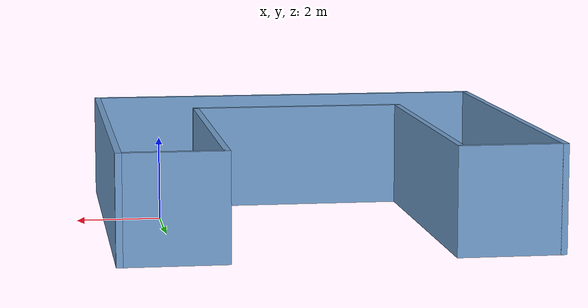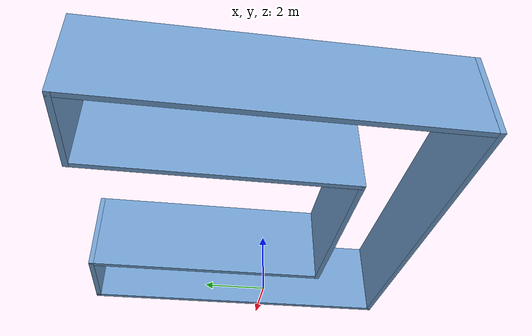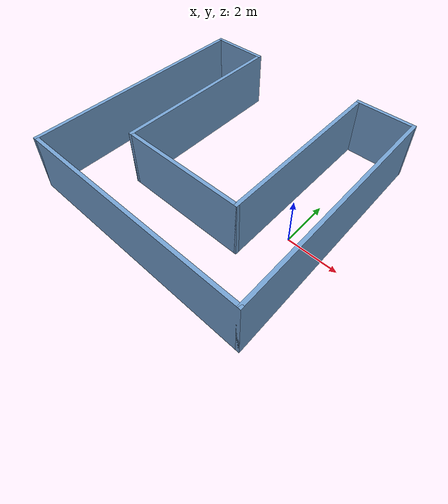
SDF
<?xml version='1.0'?>
<sdf version='1.6'>
  <model name='mybuilding'>
    <pose frame=''>-3.62858 0.777581 0 0 -0 0</pose>
    <link name='Wall_10'>
      <collision name='Wall_10_Collision'>
        <geometry>
          <box>
            <size>2.5 0.15 2.5</size>
          </box>
        </geometry>
        <pose frame=''>0 0 1.25 0 -0 0</pose>
      </collision>
      <visual name='Wall_10_Visual'>
        <pose frame=''>0 0 1.25 0 -0 0</pose>
        <geometry>
          <box>
            <size>2.5 0.15 2.5</size>
          </box>
        </geometry>
        <material>
          <script>
            <uri>file://media/materials/scripts/gazebo.material</uri>
            <name>Gazebo/Grey</name>
          </script>
          <ambient>0.447059 0.623529 0.811765 1</ambient>
        </material>
        <meta>
          <layer>0</layer>
        </meta>
      </visual>
      <pose frame=''>-3.75 4.925 0 0 -0 0</pose>
    </link>
    <link name='Wall_12'>
      <collision name='Wall_12_Collision'>
        <geometry>
          <box>
            <size>10 0.15 2.5</size>
          </box>
        </geometry>
        <pose frame=''>0 0 1.25 0 -0 0</pose>
      </collision>
      <visual name='Wall_12_Visual'>
        <pose frame=''>0 0 1.25 0 -0 0</pose>
        <geometry>
          <box>
            <size>10 0.15 2.5</size>
          </box>
        </geometry>
        <material>
          <script>
            <uri>file://media/materials/scripts/gazebo.material</uri>
            <name>Gazebo/Grey</name>
          </script>
          <ambient>0.447059 0.623529 0.811765 1</ambient>
        </material>
        <meta>
          <layer>0</layer>
        </meta>
      </visual>
      <pose frame=''>0 -4.925 0 0 -0 0</pose>
    </link>
    <link name='Wall_13'>
      <collision name='Wall_13_Collision'>
        <geometry>
          <box>
            <size>10 0.15 2.5</size>
          </box>
        </geometry>
        <pose frame=''>0 0 1.25 0 -0 0</pose>
      </collision>
      <visual name='Wall_13_Visual'>
        <pose frame=''>0 0 1.25 0 -0 0</pose>
        <geometry>
          <box>
            <size>10 0.15 2.5</size>
          </box>
        </geometry>
        <material>
          <script>
            <uri>file://media/materials/scripts/gazebo.material</uri>
            <name>Gazebo/Grey</name>
          </script>
          <ambient>0.447059 0.623529 0.811765 1</ambient>
        </material>
        <meta>
          <layer>0</layer>
        </meta>
      </visual>
      <pose frame=''>4.925 -0 0 0 -0 1.5708</pose>
    </link>
    <link name='Wall_15'>
      <collision name='Wall_15_Collision'>
        <geometry>
          <box>
            <size>2.5 0.15 2.5</size>
          </box>
        </geometry>
        <pose frame=''>0 0 1.25 0 -0 0</pose>
      </collision>
      <visual name='Wall_15_Visual'>
        <pose frame=''>0 0 1.25 0 -0 0</pose>
        <geometry>
          <box>
            <size>2.5 0.15 2.5</size>
          </box>
        </geometry>
        <material>
          <script>
            <uri>file://media/materials/scripts/gazebo.material</uri>
            <name>Gazebo/Grey</name>
          </script>
          <ambient>0.447059 0.623529 0.811765 1</ambient>
        </material>
        <meta>
          <layer>0</layer>
        </meta>
      </visual>
      <pose frame=''>3.75 4.925 0 0 -0 3.14159</pose>
    </link>
    <link name='Wall_16'>
      <collision name='Wall_16_Collision'>
        <geometry>
          <box>
            <size>7.5 0.15 2.5</size>
          </box>
        </geometry>
        <pose frame=''>0 0 1.25 0 -0 0</pose>
      </collision>
      <visual name='Wall_16_Visual'>
        <pose frame=''>0 0 1.25 0 -0 0</pose>
        <geometry>
          <box>
            <size>7.5 0.15 2.5</size>
          </box>
        </geometry>
        <material>
          <script>
            <uri>file://media/materials/scripts/gazebo.material</uri>
            <name>Gazebo/Grey</name>
          </script>
          <ambient>0.447059 0.623529 0.811765 1</ambient>
        </material>
        <meta>
          <layer>0</layer>
        </meta>
      </visual>
      <pose frame=''>2.575 1.25 0 0 -0 -1.5708</pose>
    </link>
    <link name='Wall_18'>
      <collision name='Wall_18_Collision'>
        <geometry>
          <box>
            <size>7.5 0.15 2.5</size>
          </box>
        </geometry>
        <pose frame=''>0 0 1.25 0 -0 0</pose>
      </collision>
      <visual name='Wall_18_Visual'>
        <pose frame=''>0 0 1.25 0 -0 0</pose>
        <geometry>
          <box>
            <size>7.5 0.15 2.5</size>
          </box>
        </geometry>
        <material>
          <script>
            <uri>file://media/materials/scripts/gazebo.material</uri>
            <name>Gazebo/Grey</name>
          </script>
          <ambient>0.447059 0.623529 0.811765 1</ambient>
        </material>
        <meta>
          <layer>0</layer>
        </meta>
      </visual>
      <pose frame=''>-2.575 1.25 0 0 -0 -1.5708</pose>
    </link>
    <link name='Wall_19'>
      <collision name='Wall_19_Collision'>
        <geometry>
          <box>
            <size>5.3 0.15 2.5</size>
          </box>
        </geometry>
        <pose frame=''>0 0 1.25 0 -0 0</pose>
      </collision>
      <visual name='Wall_19_Visual'>
        <pose frame=''>0 0 1.25 0 -0 0</pose>
        <geometry>
          <box>
            <size>5.3 0.15 2.5</size>
          </box>
        </geometry>
        <material>
          <script>
            <uri>file://media/materials/scripts/gazebo.material</uri>
            <name>Gazebo/Grey</name>
          </script>
          <ambient>0.447059 0.623529 0.811765 1</ambient>
        </material>
        <meta>
          <layer>0</layer>
        </meta>
      </visual>
      <pose frame=''>0 -2.425 0 0 -0 0</pose>
    </link>
    <link name='Wall_6'>
      <collision name='Wall_6_Collision'>
        <geometry>
          <box>
            <size>10 0.15 2.5</size>
          </box>
        </geometry>
        <pose frame=''>0 0 1.25 0 -0 0</pose>
      </collision>
      <visual name='Wall_6_Visual'>
        <pose frame=''>0 0 1.25 0 -0 0</pose>
        <geometry>
          <box>
            <size>10 0.15 2.5</size>
          </box>
        </geometry>
        <material>
          <script>
            <uri>file://media/materials/scripts/gazebo.material</uri>
            <name>Gazebo/Grey</name>
          </script>
          <ambient>0.447059 0.623529 0.811765 1</ambient>
        </material>
        <meta>
          <layer>0</layer>
        </meta>
      </visual>
      <pose frame=''>-4.925 -0 0 0 -0 1.5708</pose>
    </link>
    <static>1</static>
  </model>
</sdf>
